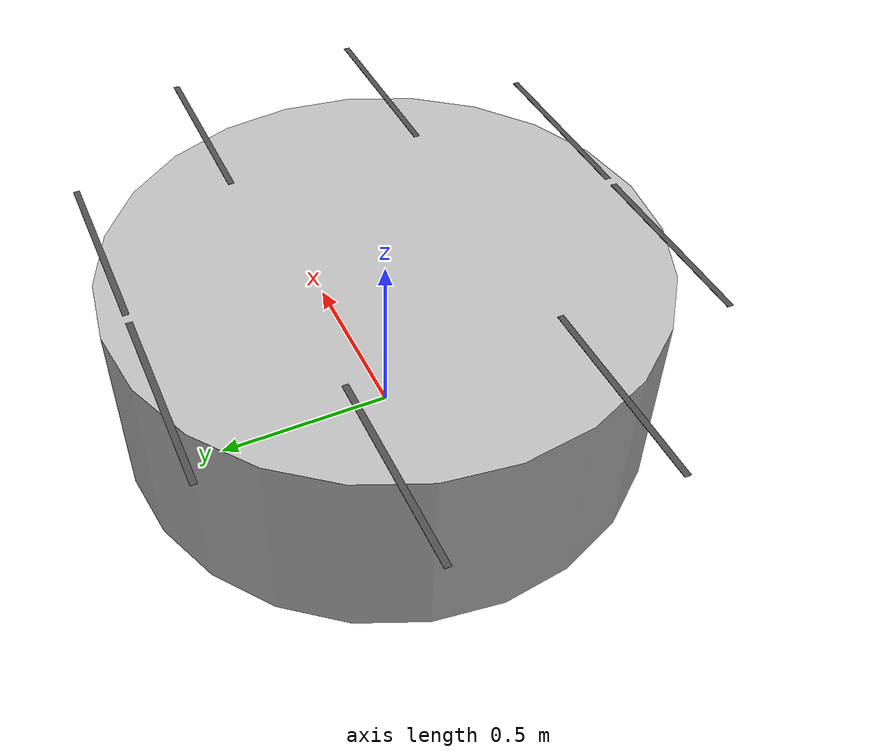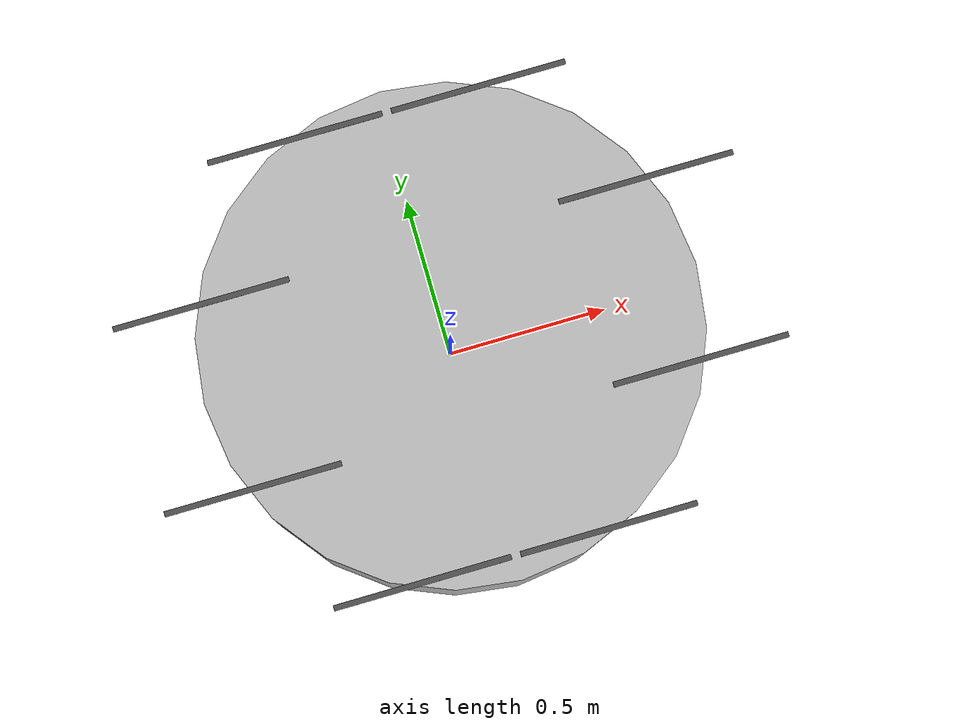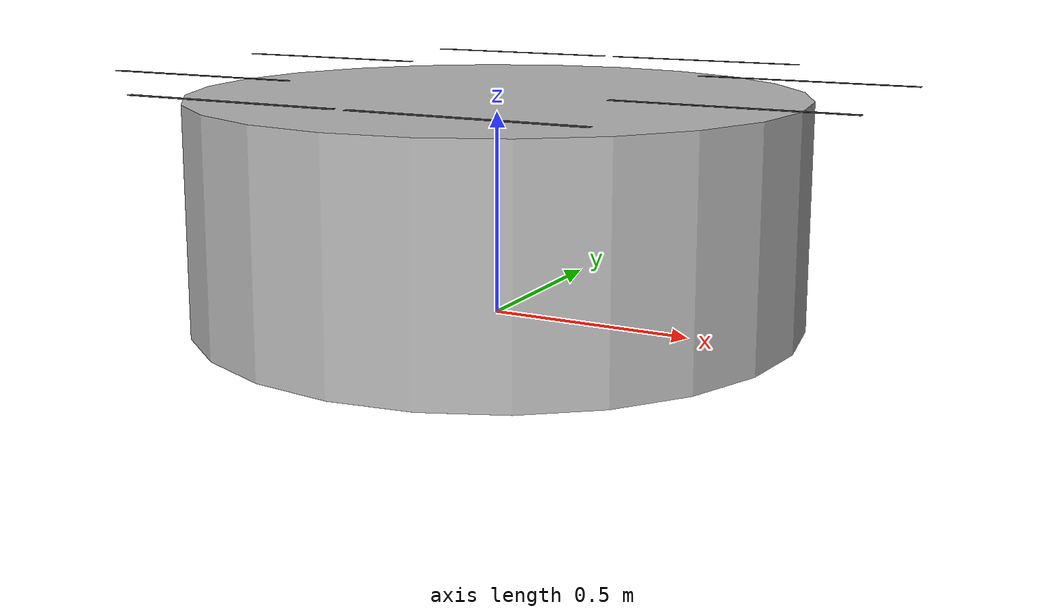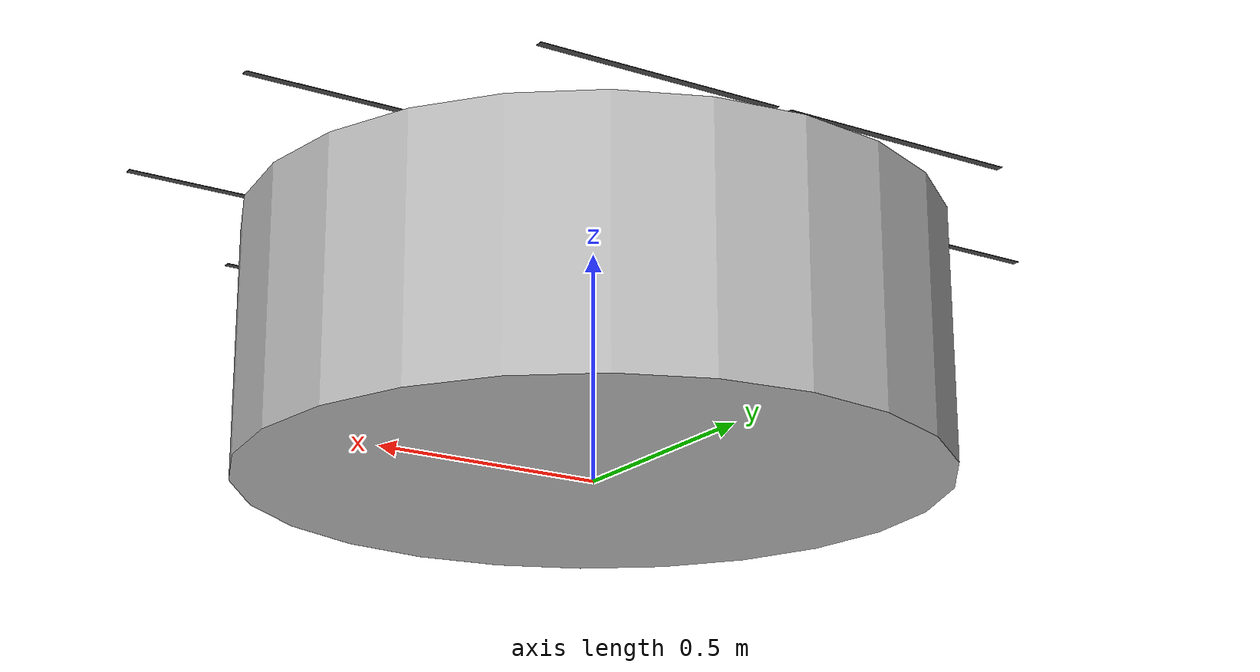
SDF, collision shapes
<?xml version="1.0" encoding="UTF-8"?>
<sdf version='1.9'>
  <model name='hovercrane'>
    <pose>0 0 .24 0 0 0</pose>
    <self_collide>false</self_collide>
    <static>false</static>
    <link name="base_link">
      <inertial>
        <mass>2.0</mass>
        <inertia>
          <ixx>0.02166666666666667</ixx>
          <ixy>0</ixy>
          <ixz>0</ixz>
          <iyy>0.02166666666666667</iyy>
          <iyz>0</iyz>
          <izz>0.04000000000000001</izz>
        </inertia>
      </inertial>
      <gravity>true</gravity>
      <velocity_decay/>
      <visual name="base_link_visual">
        <pose>0 0 .31 0 0 0.3926991</pose>
        <geometry>
          <mesh>
            <scale>1 1 1</scale>
            <uri>model://hovercrane/meshes/hovercrane.dae</uri>
          </mesh>
        </geometry>
      </visual>
      <visual name="5010_motor_base_0">
        <pose>0.6777137 0.2807182 .342 0 0 .45</pose>
        <geometry>
          <mesh>
            <scale>1 1 1</scale>
            <uri>model://hovercrane/meshes/5010Base.dae</uri>
          </mesh>
        </geometry>
      </visual>
      <visual name="5010_motor_base_1">
        <pose>0.2807182 0.6777136788 .342 0 0 .45</pose>
        <geometry>
          <mesh>
            <scale>1 1 1</scale>
            <uri>model://hovercrane/meshes/5010Base.dae</uri>
          </mesh>
        </geometry>
      </visual>
      <visual name="5010_motor_base_2">
        <pose>-0.2807181972 0.6777136788 .342 0 0 .45</pose>
        <geometry>
          <mesh>
            <scale>1 1 1</scale>
            <uri>model://hovercrane/meshes/5010Base.dae</uri>
          </mesh>
        </geometry>
      </visual>
      <visual name="5010_motor_base_3">
        <pose>-0.6777136788 0.2807181972 .342 0 0 .45</pose>
        <geometry>
          <mesh>
            <scale>1 1 1</scale>
            <uri>model://hovercrane/meshes/5010Base.dae</uri>
          </mesh>
        </geometry>
      </visual>
      <visual name="5010_motor_base_4">
        <pose>-0.6777136788 -0.2807181972 .342 0 0 .45</pose>
        <geometry>
          <mesh>
            <scale>1 1 1</scale>
            <uri>model://hovercrane/meshes/5010Base.dae</uri>
          </mesh>
        </geometry>
      </visual>
      <visual name="5010_motor_base_5">
        <pose>-0.2807181972 -0.6777136788 .342 0 0 .45</pose>
        <geometry>
          <mesh>
            <scale>1 1 1</scale>
            <uri>model://hovercrane/meshes/5010Base.dae</uri>
          </mesh>
        </geometry>
      </visual>
      <visual name="5010_motor_base_6">
        <pose>0.2807181972 -0.6777136788 .342 0 0 .45</pose>
        <geometry>
          <mesh>
            <scale>1 1 1</scale>
            <uri>model://hovercrane/meshes/5010Base.dae</uri>
          </mesh>
        </geometry>
      </visual>
      <visual name="5010_motor_base_7">
        <pose>0.6777136788 -0.2807181972 .342 0 0 .45</pose>
        <geometry>
          <mesh>
            <scale>1 1 1</scale>
            <uri>model://hovercrane/meshes/5010Base.dae</uri>
          </mesh>
        </geometry>
      </visual>
      <collision name="base_link_collision_0">
        <pose>0 0 .03 0 0 0</pose>
        <geometry>
          <cylinder>
            <radius>.75</radius>
            <length>.55</length>
          </cylinder>
        </geometry>
        <surface>
          <contact>
            <ode>
              <min_depth>0.001</min_depth>
              <max_vel>0</max_vel>
            </ode>
          </contact>
          <friction>
            <ode/>
          </friction>
        </surface>
      </collision>
      <sensor name="air_pressure_sensor" type="air_pressure">
        <always_on>1</always_on>
        <update_rate>50</update_rate>
        <air_pressure>
          <pressure>
            <noise type="gaussian">
              <mean>0</mean>
              <stddev>0.01</stddev>
            </noise>
          </pressure>
        </air_pressure>
      </sensor>
      <sensor name="imu_sensor" type="imu">
        <always_on>1</always_on>
        <update_rate>250</update_rate>
      </sensor>
      <sensor name='gpu_lidar' type='gpu_lidar'>"
        <pose relative_to='lidarJoint'>0 0 0 0 0 0</pose>
        <update_rate>10</update_rate>
        <ray>
          <scan>
            <horizontal>
              <samples>640</samples>
              <resolution>1</resolution>
              <min_angle>-1.396263</min_angle>
              <max_angle>1.396263</max_angle>
            </horizontal>
            <vertical>
              <samples>1</samples>
              <resolution>0.01</resolution>
              <min_angle>0</min_angle>
              <max_angle>0</max_angle>
            </vertical>
          </scan>
          <range>
            <min>0.08</min>
            <max>10.0</max>
            <resolution>0.01</resolution>
          </range>
        </ray>
        <always_on>1</always_on>
        <visualize>true</visualize>
      </sensor>
    </link>
    <link name="rotor_0">
      <gravity>true</gravity>
      <self_collide>false</self_collide>
      <velocity_decay/>
      <pose>0.6777136788 0.2807181972 0.342 0 0 0</pose>
      <inertial>
          <mass>0.016076923076923075</mass>
          <inertia>
            <ixx>3.8464910483993325e-07</ixx>
            <iyy>2.6115851691700804e-05</iyy>
            <izz>2.649858234714004e-05</izz>
          </inertia>
        </inertial>
      <visual name="rotor_0_visual">
        <pose>.009 0.001 0.028 0 0 0</pose>
        <geometry>
          <mesh>
            <scale>2 2 2</scale>
            <uri>model://hovercrane/meshes/iris_prop_ccw.dae</uri>
          </mesh>
        </geometry>
        <material>
          <script>
            <name>Gazebo/DarkGrey</name>
            <uri>file://media/materials/scripts/gazebo.material</uri>
          </script>
        </material>
      </visual>
      <visual name="rotor_0_visual_motor_bell">
        <pose>0 0 0 0 0 0</pose>
        <geometry>
          <mesh>
            <scale>1 1 1</scale>
            <uri>model://hovercrane/meshes/5010Bell.dae</uri>
          </mesh>
        </geometry>
      </visual>
      <collision name="rotor_0_collision">
        <pose>0 0 0 0 0 0 </pose>
        <geometry>
          <box>
            <size>0.5334 0.016923076923076923 0.0008461538461538462</size>
          </box>
        </geometry>
        <surface>
          <contact>
            <ode>
              <min_depth>0.001</min_depth>
              <max_vel>0</max_vel>
            </ode>
          </contact>
          <friction>
            <ode/>
          </friction>
        </surface>
      </collision>
    </link>
    <joint name="rotor_0_joint" type="revolute">
      <parent>base_link</parent>
      <child>rotor_0</child>
      <axis>
        <xyz>0 0 1</xyz>
        <limit>
          <lower>-1e+16</lower>
          <upper>1e+16</upper>
        </limit>
        <dynamics>
          <spring_reference>0</spring_reference>
          <spring_stiffness>0</spring_stiffness>
        </dynamics>
      </axis>
    </joint>

    <link name="rotor_1">
      <gravity>true</gravity>
      <self_collide>false</self_collide>
      <velocity_decay/>
      <pose>0.2807181972 0.6777136788 0.342 0 0 0</pose>
      <inertial>
          <mass>0.016076923076923075</mass>
          <inertia>
            <ixx>3.8464910483993325e-07</ixx>
            <iyy>2.6115851691700804e-05</iyy>
            <izz>2.649858234714004e-05</izz>
          </inertia>
        </inertial>
      <visual name="rotor_1_visual">
        <pose>0.0015 0 0.028 0 0 0</pose>
        <geometry>
          <mesh>
            <scale>2 2 2</scale>
            <uri>model://hovercrane/meshes/iris_prop_cw.dae</uri>
          </mesh>
        </geometry>
        <material>
          <script>
            <name>Gazebo/DarkGrey</name>
            <uri>file://media/materials/scripts/gazebo.material</uri>
          </script>
        </material>
      </visual>
      <visual name="rotor_1_visual_motor_bell">
        <pose>0 0 0 0 0 0</pose>
        <geometry>
          <mesh>
            <scale>1 1 1</scale>
            <uri>model://hovercrane/meshes/5010Bell.dae</uri>
          </mesh>
        </geometry>
      </visual>
      <collision name="rotor_1_collision">
        <pose>0 0 0 0 0 0 </pose>
        <geometry>
          <box>
            <size>0.5334 0.016923076923076923 0.0008461538461538462</size>
          </box>
        </geometry>
        <surface>
          <contact>
            <ode>
              <min_depth>0.001</min_depth>
              <max_vel>0</max_vel>
            </ode>
          </contact>
          <friction>
            <ode/>
          </friction>
        </surface>
      </collision>
    </link>
    <joint name="rotor_1_joint" type="revolute">
      <parent>base_link</parent>
      <child>rotor_1</child>
      <axis>
        <xyz>0 0 1</xyz>
        <limit>
          <lower>-1e+16</lower>
          <upper>1e+16</upper>
        </limit>
        <dynamics>
          <spring_reference>0</spring_reference>
          <spring_stiffness>0</spring_stiffness>
        </dynamics>
      </axis>
    </joint>

    <link name="rotor_2">
      <gravity>true</gravity>
      <self_collide>false</self_collide>
      <velocity_decay/>
      <pose>-0.2807181972 0.6777136788 0.342 0 0 0</pose>
      <inertial>
          <mass>0.016076923076923075</mass>
          <inertia>
            <ixx>3.8464910483993325e-07</ixx>
            <iyy>2.6115851691700804e-05</iyy>
            <izz>2.649858234714004e-05</izz>
          </inertia>
        </inertial>
      <visual name="rotor_2_visual">
        <pose>.009 0.001 0.028 0 0 0</pose>
        <geometry>
          <mesh>
            <scale>2 2 2</scale>
            <uri>model://hovercrane/meshes/iris_prop_ccw.dae</uri>
          </mesh>
        </geometry>
        <material>
          <script>
            <name>Gazebo/DarkGrey</name>
            <uri>file://media/materials/scripts/gazebo.material</uri>
          </script>
        </material>
      </visual>
      <visual name="rotor_2_visual_motor_bell">
        <pose>0 0 0 0 0 0</pose>
        <geometry>
          <mesh>
            <scale>1 1 1</scale>
            <uri>model://hovercrane/meshes/5010Bell.dae</uri>
          </mesh>
        </geometry>
      </visual>
      <collision name="rotor_2_collision">
        <pose>0 0 0 0 0 0 </pose>
        <geometry>
          <box>
            <size>0.5334 0.016923076923076923 0.0008461538461538462</size>
          </box>
        </geometry>
        <surface>
          <contact>
            <ode>
              <min_depth>0.001</min_depth>
              <max_vel>0</max_vel>
            </ode>
          </contact>
          <friction>
            <ode/>
          </friction>
        </surface>
      </collision>
    </link>
    <joint name="rotor_2_joint" type="revolute">
      <parent>base_link</parent>
      <child>rotor_2</child>
      <axis>
        <xyz>0 0 1</xyz>
        <limit>
          <lower>-1e+16</lower>
          <upper>1e+16</upper>
        </limit>
        <dynamics>
          <spring_reference>0</spring_reference>
          <spring_stiffness>0</spring_stiffness>
        </dynamics>
      </axis>
    </joint>

    <link name="rotor_3">
      <gravity>true</gravity>
      <self_collide>false</self_collide>
      <velocity_decay/>
      <pose>-0.6777136788 0.2807181972 0.342 0 0 0</pose>
      <inertial>
          <mass>0.016076923076923075</mass>
          <inertia>
            <ixx>3.8464910483993325e-07</ixx>
            <iyy>2.6115851691700804e-05</iyy>
            <izz>2.649858234714004e-05</izz>
          </inertia>
        </inertial>
      <visual name="rotor_3_visual">
        <pose>0.0015 0 0.028 0 0 0</pose>
        <geometry>
          <mesh>
            <scale>2 2 2</scale>
            <uri>model://hovercrane/meshes/iris_prop_cw.dae</uri>
          </mesh>
        </geometry>
        <material>
          <script>
            <name>Gazebo/DarkGrey</name>
            <uri>file://media/materials/scripts/gazebo.material</uri>
          </script>
        </material>
      </visual>
      <visual name="rotor_3_visual_motor_bell">
        <pose>0 0 0 0 0 0</pose>
        <geometry>
          <mesh>
            <scale>1 1 1</scale>
            <uri>model://hovercrane/meshes/5010Bell.dae</uri>
          </mesh>
        </geometry>
      </visual>
      <collision name="rotor_3_collision">
        <pose>0 0 0 0 0 0 </pose>
        <geometry>
          <box>
            <size>0.5334 0.016923076923076923 0.0008461538461538462</size>
          </box>
        </geometry>
        <surface>
          <contact>
            <ode>
              <min_depth>0.001</min_depth>
              <max_vel>0</max_vel>
            </ode>
          </contact>
          <friction>
            <ode/>
          </friction>
        </surface>
      </collision>
    </link>
    <joint name="rotor_3_joint" type="revolute">
      <parent>base_link</parent>
      <child>rotor_3</child>
      <axis>
        <xyz>0 0 1</xyz>
        <limit>
          <lower>-1e+16</lower>
          <upper>1e+16</upper>
        </limit>
        <dynamics>
          <spring_reference>0</spring_reference>
          <spring_stiffness>0</spring_stiffness>
        </dynamics>
      </axis>
    </joint>

    <link name="rotor_4">
      <gravity>true</gravity>
      <self_collide>false</self_collide>
      <velocity_decay/>
      <pose>-0.6777136788 -0.2807181972 0.342 0 0 0</pose>
      <inertial>
          <mass>0.016076923076923075</mass>
          <inertia>
            <ixx>3.8464910483993325e-07</ixx>
            <iyy>2.6115851691700804e-05</iyy>
            <izz>2.649858234714004e-05</izz>
          </inertia>
        </inertial>
      <visual name="rotor_4_visual">
        <pose>.009 0.001 0.028 0 0 0</pose>
        <geometry>
          <mesh>
            <scale>2 2 2</scale>
            <uri>model://hovercrane/meshes/iris_prop_ccw.dae</uri>
          </mesh>
        </geometry>
        <material>
          <script>
            <name>Gazebo/DarkGrey</name>
            <uri>file://media/materials/scripts/gazebo.material</uri>
          </script>
        </material>
      </visual>
      <visual name="rotor_4_visual_motor_bell">
        <pose>0 0 0 0 0 0</pose>
        <geometry>
          <mesh>
            <scale>1 1 1</scale>
            <uri>model://hovercrane/meshes/5010Bell.dae</uri>
          </mesh>
        </geometry>
      </visual>
      <collision name="rotor_4_collision">
        <pose>0 0 0 0 0 0 </pose>
        <geometry>
          <box>
            <size>0.5334 0.016923076923076923 0.0008461538461538462</size>
          </box>
        </geometry>
        <surface>
          <contact>
            <ode>
              <min_depth>0.001</min_depth>
              <max_vel>0</max_vel>
            </ode>
          </contact>
          <friction>
            <ode/>
          </friction>
        </surface>
      </collision>
    </link>
    <joint name="rotor_4_joint" type="revolute">
      <parent>base_link</parent>
      <child>rotor_4</child>
      <axis>
        <xyz>0 0 1</xyz>
        <limit>
          <lower>-1e+16</lower>
          <upper>1e+16</upper>
        </limit>
        <dynamics>
          <spring_reference>0</spring_reference>
          <spring_stiffness>0</spring_stiffness>
        </dynamics>
      </axis>
    </joint>
    <link name="rotor_5">
      <gravity>true</gravity>
      <self_collide>false</self_collide>
      <velocity_decay/>
      <pose>-0.2807181972 -0.6777136788 0.342 0 0 0</pose>
      <inertial>
          <mass>0.016076923076923075</mass>
          <inertia>
            <ixx>3.8464910483993325e-07</ixx>
            <iyy>2.6115851691700804e-05</iyy>
            <izz>2.649858234714004e-05</izz>
          </inertia>
        </inertial>
      <visual name="rotor_5_visual">
        <pose>0.0015 0 0.028 0 0 0</pose>
        <geometry>
          <mesh>
            <scale>2 2 2</scale>
            <uri>model://hovercrane/meshes/iris_prop_cw.dae</uri>
          </mesh>
        </geometry>
        <material>
          <script>
            <name>Gazebo/DarkGrey</name>
            <uri>file://media/materials/scripts/gazebo.material</uri>
          </script>
        </material>
      </visual>
      <visual name="rotor_5_visual_motor_bell">
        <pose>0 0 0 0 0 0</pose>
        <geometry>
          <mesh>
            <scale>1 1 1</scale>
            <uri>model://hovercrane/meshes/5010Bell.dae</uri>
          </mesh>
        </geometry>
      </visual>
      <collision name="rotor_5_collision">
        <pose>0 0 0 0 0 0 </pose>
        <geometry>
          <box>
            <size>0.5334 0.016923076923076923 0.0008461538461538462</size>
          </box>
        </geometry>
        <surface>
          <contact>
            <ode>
              <min_depth>0.001</min_depth>
              <max_vel>0</max_vel>
            </ode>
          </contact>
          <friction>
            <ode/>
          </friction>
        </surface>
      </collision>
    </link>
    <joint name="rotor_5_joint" type="revolute">
      <parent>base_link</parent>
      <child>rotor_5</child>
      <axis>
        <xyz>0 0 1</xyz>
        <limit>
          <lower>-1e+16</lower>
          <upper>1e+16</upper>
        </limit>
        <dynamics>
          <spring_reference>0</spring_reference>
          <spring_stiffness>0</spring_stiffness>
        </dynamics>
      </axis>
    </joint>
    <link name="rotor_6">
      <gravity>true</gravity>
      <self_collide>false</self_collide>
      <velocity_decay/>
      <pose>0.2807181972 -0.6777136788 0.342 0 0 0</pose>
      <inertial>
          <mass>0.016076923076923075</mass>
          <inertia>
            <ixx>3.8464910483993325e-07</ixx>
            <iyy>2.6115851691700804e-05</iyy>
            <izz>2.649858234714004e-05</izz>
          </inertia>
        </inertial>
      <visual name="rotor_6_visual">
        <pose>.009 0.001 0.028 0 0 0</pose>
        <geometry>
          <mesh>
            <scale>2 2 2</scale>
            <uri>model://hovercrane/meshes/iris_prop_ccw.dae</uri>
          </mesh>
        </geometry>
        <material>
          <script>
            <name>Gazebo/DarkGrey</name>
            <uri>file://media/materials/scripts/gazebo.material</uri>
          </script>
        </material>
      </visual>
      <visual name="rotor_6_visual_motor_bell">
        <pose>0 0 0 0 0 0</pose>
        <geometry>
          <mesh>
            <scale>1 1 1</scale>
            <uri>model://hovercrane/meshes/5010Bell.dae</uri>
          </mesh>
        </geometry>
      </visual>
      <collision name="rotor_6_collision">
        <pose>0 0 0 0 0 0 </pose>
        <geometry>
          <box>
            <size>0.5334 0.016923076923076923 0.0008461538461538462</size>
          </box>
        </geometry>
        <surface>
          <contact>
            <ode>
              <min_depth>0.001</min_depth>
              <max_vel>0</max_vel>
            </ode>
          </contact>
          <friction>
            <ode/>
          </friction>
        </surface>
      </collision>
    </link>
    <joint name="rotor_6_joint" type="revolute">
      <parent>base_link</parent>
      <child>rotor_6</child>
      <axis>
        <xyz>0 0 1</xyz>
        <limit>
          <lower>-1e+16</lower>
          <upper>1e+16</upper>
        </limit>
        <dynamics>
          <spring_reference>0</spring_reference>
          <spring_stiffness>0</spring_stiffness>
        </dynamics>
      </axis>
    </joint>
    <link name="rotor_7">
      <gravity>true</gravity>
      <self_collide>false</self_collide>
      <velocity_decay/>
      <pose>0.6777136788 -0.2807181972 0.342 0 0 0</pose>
      <inertial>
          <mass>0.016076923076923075</mass>
          <inertia>
            <ixx>3.8464910483993325e-07</ixx>
            <iyy>2.6115851691700804e-05</iyy>
            <izz>2.649858234714004e-05</izz>
          </inertia>
        </inertial>
      <visual name="rotor_7_visual">
        <pose>.0015 0 0.028 0 0 0</pose>
        <geometry>
          <mesh>
            <scale>2 2 2</scale>
            <uri>model://hovercrane/meshes/iris_prop_cw.dae</uri>
          </mesh>
        </geometry>
        <material>
          <script>
            <name>Gazebo/DarkGrey</name>
            <uri>file://media/materials/scripts/gazebo.material</uri>
          </script>
        </material>
      </visual>
      <visual name="rotor_7_visual_motor_bell">
        <pose>0 0 0 0 0 0</pose>
        <geometry>
          <mesh>
            <scale>1 1 1</scale>
            <uri>model://hovercrane/meshes/5010Bell.dae</uri>
          </mesh>
        </geometry>
      </visual>
      <collision name="rotor_7_collision">
        <pose>0 0 0 0 0 0 </pose>
        <geometry>
          <box>
            <size>0.5334 0.016923076923076923 0.0008461538461538462</size>
          </box>
        </geometry>
        <surface>
          <contact>
            <ode>
              <min_depth>0.001</min_depth>
              <max_vel>0</max_vel>
            </ode>
          </contact>
          <friction>
            <ode/>
          </friction>
        </surface>
      </collision>
    </link>
    <joint name="rotor_7_joint" type="revolute">
      <parent>base_link</parent>
      <child>rotor_7</child>
      <axis>
        <xyz>0 0 1</xyz>
        <limit>
          <lower>-1e+16</lower>
          <upper>1e+16</upper>
        </limit>
        <dynamics>
          <spring_reference>0</spring_reference>
          <spring_stiffness>0</spring_stiffness>
        </dynamics>
      </axis>
    </joint>

   <plugin filename="gz-sim-multicopter-motor-model-system" name="gz::sim::systems::MulticopterMotorModel">
      <jointName>rotor_0_joint</jointName>
      <linkName>rotor_0</linkName>
      <turningDirection>ccw</turningDirection>
      <timeConstantUp>0.0125</timeConstantUp>
      <timeConstantDown>0.025</timeConstantDown>
      <maxRotVelocity>1000.0</maxRotVelocity>
      <motorConstant>8.54858e-06</motorConstant>
      <momentConstant>0.016</momentConstant>
      <commandSubTopic>command/motor_speed</commandSubTopic>
      <motorNumber>4</motorNumber>
      <rotorDragCoefficient>8.06428e-05</rotorDragCoefficient>
      <rollingMomentCoefficient>1e-06</rollingMomentCoefficient>
      <rotorVelocitySlowdownSim>10</rotorVelocitySlowdownSim>
      <motorType>velocity</motorType>
    </plugin>
    <plugin filename="gz-sim-multicopter-motor-model-system" name="gz::sim::systems::MulticopterMotorModel">
      <jointName>rotor_1_joint</jointName>
      <linkName>rotor_1</linkName>
      <turningDirection>cw</turningDirection>
      <timeConstantUp>0.0125</timeConstantUp>
      <timeConstantDown>0.025</timeConstantDown>
      <maxRotVelocity>1000.0</maxRotVelocity>
      <motorConstant>8.54858e-06</motorConstant>
      <momentConstant>0.016</momentConstant>
      <commandSubTopic>command/motor_speed</commandSubTopic>
      <motorNumber>6</motorNumber>
      <rotorDragCoefficient>8.06428e-05</rotorDragCoefficient>
      <rollingMomentCoefficient>1e-06</rollingMomentCoefficient>
      <rotorVelocitySlowdownSim>10</rotorVelocitySlowdownSim>
      <motorType>velocity</motorType>
    </plugin>
    <plugin filename="gz-sim-multicopter-motor-model-system" name="gz::sim::systems::MulticopterMotorModel">
      <jointName>rotor_2_joint</jointName>
      <linkName>rotor_2</linkName>
      <turningDirection>ccw</turningDirection>
      <timeConstantUp>0.0125</timeConstantUp>
      <timeConstantDown>0.025</timeConstantDown>
      <maxRotVelocity>1000.0</maxRotVelocity>
      <motorConstant>8.54858e-06</motorConstant>
      <momentConstant>0.016</momentConstant>
      <commandSubTopic>command/motor_speed</commandSubTopic>
      <motorNumber>5</motorNumber>
      <rotorDragCoefficient>8.06428e-05</rotorDragCoefficient>
      <rollingMomentCoefficient>1e-06</rollingMomentCoefficient>
      <rotorVelocitySlowdownSim>10</rotorVelocitySlowdownSim>
      <motorType>velocity</motorType>
    </plugin>
    <plugin filename="gz-sim-multicopter-motor-model-system" name="gz::sim::systems::MulticopterMotorModel">
      <jointName>rotor_3_joint</jointName>
      <linkName>rotor_3</linkName>
      <turningDirection>cw</turningDirection>
      <timeConstantUp>0.0125</timeConstantUp>
      <timeConstantDown>0.025</timeConstantDown>
      <maxRotVelocity>1000.0</maxRotVelocity>
      <motorConstant>8.54858e-06</motorConstant>
      <momentConstant>0.016</momentConstant>
      <commandSubTopic>command/motor_speed</commandSubTopic>
      <motorNumber>1</motorNumber>
      <rotorDragCoefficient>8.06428e-05</rotorDragCoefficient>
      <rollingMomentCoefficient>1e-06</rollingMomentCoefficient>
      <rotorVelocitySlowdownSim>10</rotorVelocitySlowdownSim>
      <motorType>velocity</motorType>
    </plugin>
    <plugin filename="gz-sim-multicopter-motor-model-system" name="gz::sim::systems::MulticopterMotorModel">
      <jointName>rotor_4_joint</jointName>
      <linkName>rotor_4</linkName>
      <turningDirection>ccw</turningDirection>
      <timeConstantUp>0.0125</timeConstantUp>
      <timeConstantDown>0.025</timeConstantDown>
      <maxRotVelocity>1000.0</maxRotVelocity>
      <motorConstant>8.54858e-06</motorConstant>
      <momentConstant>0.016</momentConstant>
      <commandSubTopic>command/motor_speed</commandSubTopic>
      <motorNumber>3</motorNumber>
      <rotorDragCoefficient>8.06428e-05</rotorDragCoefficient>
      <rollingMomentCoefficient>1e-06</rollingMomentCoefficient>
      <rotorVelocitySlowdownSim>10</rotorVelocitySlowdownSim>
      <motorType>velocity</motorType>
    </plugin>
    <plugin filename="gz-sim-multicopter-motor-model-system" name="gz::sim::systems::MulticopterMotorModel">
      <jointName>rotor_5_joint</jointName>
      <linkName>rotor_5</linkName>
      <turningDirection>cw</turningDirection>
      <timeConstantUp>0.0125</timeConstantUp>
      <timeConstantDown>0.025</timeConstantDown>
      <maxRotVelocity>1000.0</maxRotVelocity>
      <motorConstant>8.54858e-06</motorConstant>
      <momentConstant>0.016</momentConstant>
      <commandSubTopic>command/motor_speed</commandSubTopic>
      <motorNumber>7</motorNumber>
      <rotorDragCoefficient>8.06428e-05</rotorDragCoefficient>
      <rollingMomentCoefficient>1e-06</rollingMomentCoefficient>
      <rotorVelocitySlowdownSim>10</rotorVelocitySlowdownSim>
      <motorType>velocity</motorType>
    </plugin>
    <plugin filename="gz-sim-multicopter-motor-model-system" name="gz::sim::systems::MulticopterMotorModel">
      <jointName>rotor_6_joint</jointName>
      <linkName>rotor_6</linkName>
      <turningDirection>ccw</turningDirection>
      <timeConstantUp>0.0125</timeConstantUp>
      <timeConstantDown>0.025</timeConstantDown>
      <maxRotVelocity>1000.0</maxRotVelocity>
      <motorConstant>8.54858e-06</motorConstant>
      <momentConstant>0.016</momentConstant>
      <commandSubTopic>command/motor_speed</commandSubTopic>
      <motorNumber>2</motorNumber>
      <rotorDragCoefficient>8.06428e-05</rotorDragCoefficient>
      <rollingMomentCoefficient>1e-06</rollingMomentCoefficient>
      <rotorVelocitySlowdownSim>10</rotorVelocitySlowdownSim>
      <motorType>velocity</motorType>
    </plugin>
    <plugin filename="gz-sim-multicopter-motor-model-system" name="gz::sim::systems::MulticopterMotorModel">
      <jointName>rotor_7_joint</jointName>
      <linkName>rotor_7</linkName>
      <turningDirection>cw</turningDirection>
      <timeConstantUp>0.0125</timeConstantUp>
      <timeConstantDown>0.025</timeConstantDown>
      <maxRotVelocity>1000.0</maxRotVelocity>
      <motorConstant>8.54858e-06</motorConstant>
      <momentConstant>0.016</momentConstant>
      <commandSubTopic>command/motor_speed</commandSubTopic>
      <motorNumber>0</motorNumber>
      <rotorDragCoefficient>8.06428e-05</rotorDragCoefficient>
      <rollingMomentCoefficient>1e-06</rollingMomentCoefficient>
      <rotorVelocitySlowdownSim>10</rotorVelocitySlowdownSim>
      <motorType>velocity</motorType>
    </plugin>
  </model>
</sdf>
